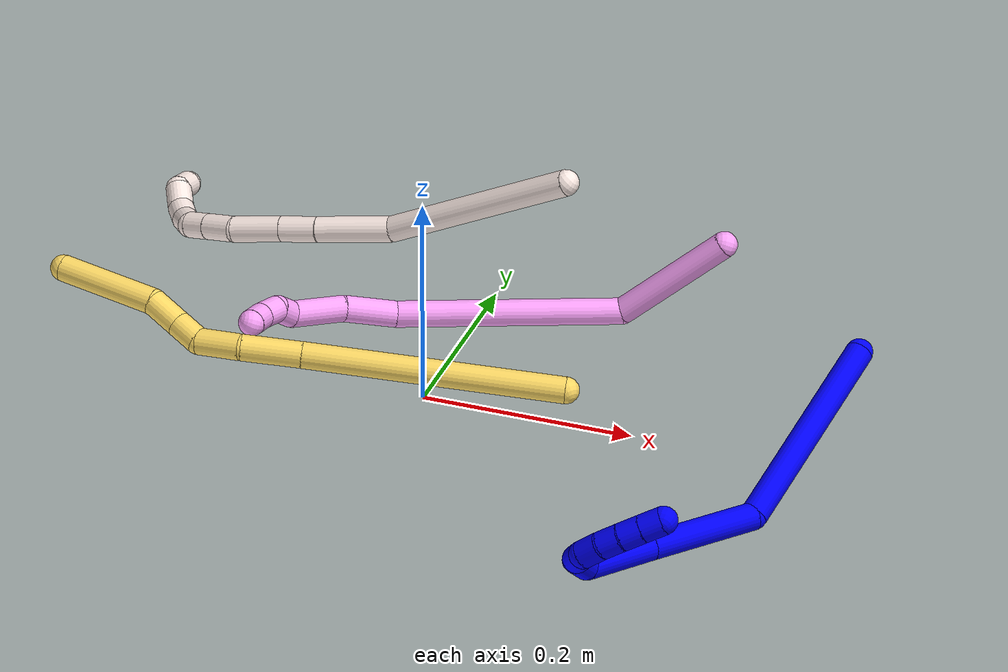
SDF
<sdf version="1.7">
 <world name="default">
  <model name="1">
   <static>0</static>
   <link name="1">
    <collision name="collision-cylinder-e_1_1_4">
     <pose>0.02632 -0.001243 0.097842 0.012704 0.262762 0.001679</pose>
     <geometry><cylinder><radius>0.0125</radius><length>0.202656</length></cylinder></geometry>
     <surface>
      <friction><ode><mu>1.16</mu><mu2>1.16</mu2><slip1>0</slip1><slip2>0</slip2></ode></friction>
      <contact><ode><kp>1e+06</kp><kd>1</kd><max_vel>0</max_vel><min_depth>0.001</min_depth></ode></contact>
     </surface>
    </collision>
    <visual name="visual-cylinder-e_1_1_4">
     <pose>0.02632 -0.001243 0.097842 0.012704 0.262762 0.001679</pose>
     <geometry><cylinder><radius>0.0125</radius><length>0.202656</length></cylinder></geometry>
     <material><ambient>0 0 1 1</ambient></material>
    </visual>
    <collision name="collision-cylinder-e_2_4_5">
     <pose>0.075457 -0.030783 0.233237 0.64576 0.451789 0.153486</pose>
     <geometry><cylinder><radius>0.0125</radius><length>0.104529</length></cylinder></geometry>
     <surface>
      <friction><ode><mu>1.16</mu><mu2>1.16</mu2><slip1>0</slip1><slip2>0</slip2></ode></friction>
      <contact><ode><kp>1e+06</kp><kd>1</kd><max_vel>0</max_vel><min_depth>0.001</min_depth></ode></contact>
     </surface>
    </collision>
    <visual name="visual-cylinder-e_2_4_5">
     <pose>0.075457 -0.030783 0.233237 0.64576 0.451789 0.153486</pose>
     <geometry><cylinder><radius>0.0125</radius><length>0.104529</length></cylinder></geometry>
     <material><ambient>0 0 1 1</ambient></material>
    </visual>
    <collision name="collision-cylinder-e_3_5_6">
     <pose>0.10944 -0.078076 0.297087 0.625548 0.331478 0.108083</pose>
     <geometry><cylinder><radius>0.0125</radius><length>0.068616</length></cylinder></geometry>
     <surface>
      <friction><ode><mu>1.16</mu><mu2>1.16</mu2><slip1>0</slip1><slip2>0</slip2></ode></friction>
      <contact><ode><kp>1e+06</kp><kd>1</kd><max_vel>0</max_vel><min_depth>0.001</min_depth></ode></contact>
     </surface>
    </collision>
    <visual name="visual-cylinder-e_3_5_6">
     <pose>0.10944 -0.078076 0.297087 0.625548 0.331478 0.108083</pose>
     <geometry><cylinder><radius>0.0125</radius><length>0.068616</length></cylinder></geometry>
     <material><ambient>0 0 1 1</ambient></material>
    </visual>
    <collision name="collision-cylinder-e_4_6_7">
     <pose>0.116403 -0.106094 0.329824 0.950914 -0.362294 -0.188038</pose>
     <geometry><cylinder><radius>0.0125</radius><length>0.023709</length></cylinder></geometry>
     <surface>
      <friction><ode><mu>1.16</mu><mu2>1.16</mu2><slip1>0</slip1><slip2>0</slip2></ode></friction>
      <contact><ode><kp>1e+06</kp><kd>1</kd><max_vel>0</max_vel><min_depth>0.001</min_depth></ode></contact>
     </surface>
    </collision>
    <visual name="visual-cylinder-e_4_6_7">
     <pose>0.116403 -0.106094 0.329824 0.950914 -0.362294 -0.188038</pose>
     <geometry><cylinder><radius>0.0125</radius><length>0.023709</length></cylinder></geometry>
     <material><ambient>0 0 1 1</ambient></material>
    </visual>
    <collision name="collision-cylinder-e_5_7_8">
     <pose>0.103779 -0.118727 0.34045 0.71173 -0.990024 -0.396048</pose>
     <geometry><cylinder><radius>0.0125</radius><length>0.020149</length></cylinder></geometry>
     <surface>
      <friction><ode><mu>1.16</mu><mu2>1.16</mu2><slip1>0</slip1><slip2>0</slip2></ode></friction>
      <contact><ode><kp>1e+06</kp><kd>1</kd><max_vel>0</max_vel><min_depth>0.001</min_depth></ode></contact>
     </surface>
    </collision>
    <visual name="visual-cylinder-e_5_7_8">
     <pose>0.103779 -0.118727 0.34045 0.71173 -0.990024 -0.396048</pose>
     <geometry><cylinder><radius>0.0125</radius><length>0.020149</length></cylinder></geometry>
     <material><ambient>0 0 1 1</ambient></material>
    </visual>
    <collision name="collision-cylinder-e_6_8_9">
     <pose>0.085358 -0.122084 0.34304 -2.98418 -1.41058 2.95684</pose>
     <geometry><cylinder><radius>0.0125</radius><length>0.020256</length></cylinder></geometry>
     <surface>
      <friction><ode><mu>1.16</mu><mu2>1.16</mu2><slip1>0</slip1><slip2>0</slip2></ode></friction>
      <contact><ode><kp>1e+06</kp><kd>1</kd><max_vel>0</max_vel><min_depth>0.001</min_depth></ode></contact>
     </surface>
    </collision>
    <visual name="visual-cylinder-e_6_8_9">
     <pose>0.085358 -0.122084 0.34304 -2.98418 -1.41058 2.95684</pose>
     <geometry><cylinder><radius>0.0125</radius><length>0.020256</length></cylinder></geometry>
     <material><ambient>0 0 1 1</ambient></material>
    </visual>
    <collision name="collision-cylinder-e_7_9_10">
     <pose>0.065816 -0.12032 0.338831 -2.61749 -1.26456 2.43968</pose>
     <geometry><cylinder><radius>0.0125</radius><length>0.020017</length></cylinder></geometry>
     <surface>
      <friction><ode><mu>1.16</mu><mu2>1.16</mu2><slip1>0</slip1><slip2>0</slip2></ode></friction>
      <contact><ode><kp>1e+06</kp><kd>1</kd><max_vel>0</max_vel><min_depth>0.001</min_depth></ode></contact>
     </surface>
    </collision>
    <visual name="visual-cylinder-e_7_9_10">
     <pose>0.065816 -0.12032 0.338831 -2.61749 -1.26456 2.43968</pose>
     <geometry><cylinder><radius>0.0125</radius><length>0.020017</length></cylinder></geometry>
     <material><ambient>0 0 1 1</ambient></material>
    </visual>
    <collision name="collision-cylinder-e_8_10_11">
     <pose>0.04708 -0.116732 0.332797 -2.59589 -1.16005 2.33432</pose>
     <geometry><cylinder><radius>0.0125</radius><length>0.020055</length></cylinder></geometry>
     <surface>
      <friction><ode><mu>1.16</mu><mu2>1.16</mu2><slip1>0</slip1><slip2>0</slip2></ode></friction>
      <contact><ode><kp>1e+06</kp><kd>1</kd><max_vel>0</max_vel><min_depth>0.001</min_depth></ode></contact>
     </surface>
    </collision>
    <visual name="visual-cylinder-e_8_10_11">
     <pose>0.04708 -0.116732 0.332797 -2.59589 -1.16005 2.33432</pose>
     <geometry><cylinder><radius>0.0125</radius><length>0.020055</length></cylinder></geometry>
     <material><ambient>0 0 1 1</ambient></material>
    </visual>
    <collision name="collision-cylinder-e_9_11_2">
     <pose>0.028726 -0.112475 0.325989 -2.56977 -1.1567 2.29537</pose>
     <geometry><cylinder><radius>0.0125</radius><length>0.020012</length></cylinder></geometry>
     <surface>
      <friction><ode><mu>1.16</mu><mu2>1.16</mu2><slip1>0</slip1><slip2>0</slip2></ode></friction>
      <contact><ode><kp>1e+06</kp><kd>1</kd><max_vel>0</max_vel><min_depth>0.001</min_depth></ode></contact>
     </surface>
    </collision>
    <visual name="visual-cylinder-e_9_11_2">
     <pose>0.028726 -0.112475 0.325989 -2.56977 -1.1567 2.29537</pose>
     <geometry><cylinder><radius>0.0125</radius><length>0.020012</length></cylinder></geometry>
     <material><ambient>0 0 1 1</ambient></material>
    </visual>
    <collision name="collision-sphere-2">
     <pose>0.019565 -0.110296 0.322603 0 -0 0</pose>
     <geometry><sphere><radius>0.0125</radius></sphere></geometry>
     <surface>
      <friction><ode><mu>1.16</mu><mu2>1.16</mu2><slip1>0</slip1><slip2>0</slip2></ode></friction>
      <contact><ode><kp>1e+06</kp><kd>1</kd><max_vel>0</max_vel><min_depth>0.001</min_depth></ode></contact>
     </surface>
    </collision>
    <visual name="visual-sphere-2">
     <pose>0.019565 -0.110296 0.322603 0 -0 0</pose>
     <geometry><sphere><radius>0.0125</radius></sphere></geometry>
     <material><ambient>0 0 1 1</ambient></material>
    </visual>
    <collision name="collision-sphere-11">
     <pose>0.037886 -0.114654 0.329374 0 -0 0</pose>
     <geometry><sphere><radius>0.0125</radius></sphere></geometry>
     <surface>
      <friction><ode><mu>1.16</mu><mu2>1.16</mu2><slip1>0</slip1><slip2>0</slip2></ode></friction>
      <contact><ode><kp>1e+06</kp><kd>1</kd><max_vel>0</max_vel><min_depth>0.001</min_depth></ode></contact>
     </surface>
    </collision>
    <visual name="visual-sphere-11">
     <pose>0.037886 -0.114654 0.329374 0 -0 0</pose>
     <geometry><sphere><radius>0.0125</radius></sphere></geometry>
     <material><ambient>0 0 1 1</ambient></material>
    </visual>
    <collision name="collision-sphere-10">
     <pose>0.056273 -0.11881 0.336219 0 -0 0</pose>
     <geometry><sphere><radius>0.0125</radius></sphere></geometry>
     <surface>
      <friction><ode><mu>1.16</mu><mu2>1.16</mu2><slip1>0</slip1><slip2>0</slip2></ode></friction>
      <contact><ode><kp>1e+06</kp><kd>1</kd><max_vel>0</max_vel><min_depth>0.001</min_depth></ode></contact>
     </surface>
    </collision>
    <visual name="visual-sphere-10">
     <pose>0.056273 -0.11881 0.336219 0 -0 0</pose>
     <geometry><sphere><radius>0.0125</radius></sphere></geometry>
     <material><ambient>0 0 1 1</ambient></material>
    </visual>
    <collision name="collision-sphere-9">
     <pose>0.075359 -0.12183 0.341444 0 -0 0</pose>
     <geometry><sphere><radius>0.0125</radius></sphere></geometry>
     <surface>
      <friction><ode><mu>1.16</mu><mu2>1.16</mu2><slip1>0</slip1><slip2>0</slip2></ode></friction>
      <contact><ode><kp>1e+06</kp><kd>1</kd><max_vel>0</max_vel><min_depth>0.001</min_depth></ode></contact>
     </surface>
    </collision>
    <visual name="visual-sphere-9">
     <pose>0.075359 -0.12183 0.341444 0 -0 0</pose>
     <geometry><sphere><radius>0.0125</radius></sphere></geometry>
     <material><ambient>0 0 1 1</ambient></material>
    </visual>
    <collision name="collision-sphere-4">
     <pose>0.05264 -0.002486 0.195684 0 -0 0</pose>
     <geometry><sphere><radius>0.0125</radius></sphere></geometry>
     <surface>
      <friction><ode><mu>1.16</mu><mu2>1.16</mu2><slip1>0</slip1><slip2>0</slip2></ode></friction>
      <contact><ode><kp>1e+06</kp><kd>1</kd><max_vel>0</max_vel><min_depth>0.001</min_depth></ode></contact>
     </surface>
    </collision>
    <visual name="visual-sphere-4">
     <pose>0.05264 -0.002486 0.195684 0 -0 0</pose>
     <geometry><sphere><radius>0.0125</radius></sphere></geometry>
     <material><ambient>0 0 1 1</ambient></material>
    </visual>
    <collision name="collision-sphere-1">
     <geometry><sphere><radius>0.0125</radius></sphere></geometry>
     <surface>
      <friction><ode><mu>1.16</mu><mu2>1.16</mu2><slip1>0</slip1><slip2>0</slip2></ode></friction>
      <contact><ode><kp>1e+06</kp><kd>1</kd><max_vel>0</max_vel><min_depth>0.001</min_depth></ode></contact>
     </surface>
    </collision>
    <visual name="visual-sphere-1">
     <geometry><sphere><radius>0.0125</radius></sphere></geometry>
     <material><ambient>0 0 1 1</ambient></material>
    </visual>
    <collision name="collision-sphere-8">
     <pose>0.095356 -0.122337 0.344635 0 -0 0</pose>
     <geometry><sphere><radius>0.0125</radius></sphere></geometry>
     <surface>
      <friction><ode><mu>1.16</mu><mu2>1.16</mu2><slip1>0</slip1><slip2>0</slip2></ode></friction>
      <contact><ode><kp>1e+06</kp><kd>1</kd><max_vel>0</max_vel><min_depth>0.001</min_depth></ode></contact>
     </surface>
    </collision>
    <visual name="visual-sphere-8">
     <pose>0.095356 -0.122337 0.344635 0 -0 0</pose>
     <geometry><sphere><radius>0.0125</radius></sphere></geometry>
     <material><ambient>0 0 1 1</ambient></material>
    </visual>
    <collision name="collision-sphere-5">
     <pose>0.098274 -0.059081 0.270789 0 -0 0</pose>
     <geometry><sphere><radius>0.0125</radius></sphere></geometry>
     <surface>
      <friction><ode><mu>1.16</mu><mu2>1.16</mu2><slip1>0</slip1><slip2>0</slip2></ode></friction>
      <contact><ode><kp>1e+06</kp><kd>1</kd><max_vel>0</max_vel><min_depth>0.001</min_depth></ode></contact>
     </surface>
    </collision>
    <visual name="visual-sphere-5">
     <pose>0.098274 -0.059081 0.270789 0 -0 0</pose>
     <geometry><sphere><radius>0.0125</radius></sphere></geometry>
     <material><ambient>0 0 1 1</ambient></material>
    </visual>
    <collision name="collision-sphere-6">
     <pose>0.120605 -0.097071 0.323384 0 -0 0</pose>
     <geometry><sphere><radius>0.0125</radius></sphere></geometry>
     <surface>
      <friction><ode><mu>1.16</mu><mu2>1.16</mu2><slip1>0</slip1><slip2>0</slip2></ode></friction>
      <contact><ode><kp>1e+06</kp><kd>1</kd><max_vel>0</max_vel><min_depth>0.001</min_depth></ode></contact>
     </surface>
    </collision>
    <visual name="visual-sphere-6">
     <pose>0.120605 -0.097071 0.323384 0 -0 0</pose>
     <geometry><sphere><radius>0.0125</radius></sphere></geometry>
     <material><ambient>0 0 1 1</ambient></material>
    </visual>
    <collision name="collision-sphere-7">
     <pose>0.112202 -0.115116 0.336264 0 -0 0</pose>
     <geometry><sphere><radius>0.0125</radius></sphere></geometry>
     <surface>
      <friction><ode><mu>1.16</mu><mu2>1.16</mu2><slip1>0</slip1><slip2>0</slip2></ode></friction>
      <contact><ode><kp>1e+06</kp><kd>1</kd><max_vel>0</max_vel><min_depth>0.001</min_depth></ode></contact>
     </surface>
    </collision>
    <visual name="visual-sphere-7">
     <pose>0.112202 -0.115116 0.336264 0 -0 0</pose>
     <geometry><sphere><radius>0.0125</radius></sphere></geometry>
     <material><ambient>0 0 1 1</ambient></material>
    </visual>
    <inertial>
     <pose>0.060294 -0.046416 0.212404 0 -0 0</pose>
     <mass>0.5</mass>
     <inertia>
      <ixx>0.000815</ixx>
      <ixy>0</ixy>
      <ixz>0</ixz>
      <iyy>0.000826</iyy>
      <iyz>0</iyz>
      <izz>-0.000123</izz>
     </inertia>
    </inertial>
   </link>
   <pose>0.387569 0.078339 0.082628 -1.8395 0.634901 2.99693</pose>
  </model>
  <model name="4">
   <static>0</static>
   <link name="4">
    <collision name="collision-cylinder-e_1_1_4">
     <pose>0.00105 -0.056448 -0.022982 1.95744 0.017222 0.025606</pose>
     <geometry><cylinder><radius>0.0125</radius><length>0.121912</length></cylinder></geometry>
     <surface>
      <friction><ode><mu>1.16</mu><mu2>1.16</mu2><slip1>0</slip1><slip2>0</slip2></ode></friction>
      <contact><ode><kp>1e+06</kp><kd>1</kd><max_vel>0</max_vel><min_depth>0.001</min_depth></ode></contact>
     </surface>
    </collision>
    <visual name="visual-cylinder-e_1_1_4">
     <pose>0.00105 -0.056448 -0.022982 1.95744 0.017222 0.025606</pose>
     <geometry><cylinder><radius>0.0125</radius><length>0.121912</length></cylinder></geometry>
     <material><ambient>1 0.65098 0.996078 1</ambient></material>
    </visual>
    <collision name="collision-cylinder-e_2_4_5">
     <pose>0.008107 -0.159903 -0.141013 2.68231 0.056593 0.240986</pose>
     <geometry><cylinder><radius>0.0125</radius><length>0.212416</length></cylinder></geometry>
     <surface>
      <friction><ode><mu>1.16</mu><mu2>1.16</mu2><slip1>0</slip1><slip2>0</slip2></ode></friction>
      <contact><ode><kp>1e+06</kp><kd>1</kd><max_vel>0</max_vel><min_depth>0.001</min_depth></ode></contact>
     </surface>
    </collision>
    <visual name="visual-cylinder-e_2_4_5">
     <pose>0.008107 -0.159903 -0.141013 2.68231 0.056593 0.240986</pose>
     <geometry><cylinder><radius>0.0125</radius><length>0.212416</length></cylinder></geometry>
     <material><ambient>1 0.65098 0.996078 1</ambient></material>
    </visual>
    <collision name="collision-cylinder-e_3_5_6">
     <pose>0.012183 -0.211211 -0.261368 2.97326 -0.075107 -0.837935</pose>
     <geometry><cylinder><radius>0.0125</radius><length>0.051482</length></cylinder></geometry>
     <surface>
      <friction><ode><mu>1.16</mu><mu2>1.16</mu2><slip1>0</slip1><slip2>0</slip2></ode></friction>
      <contact><ode><kp>1e+06</kp><kd>1</kd><max_vel>0</max_vel><min_depth>0.001</min_depth></ode></contact>
     </surface>
    </collision>
    <visual name="visual-cylinder-e_3_5_6">
     <pose>0.012183 -0.211211 -0.261368 2.97326 -0.075107 -0.837935</pose>
     <geometry><cylinder><radius>0.0125</radius><length>0.051482</length></cylinder></geometry>
     <material><ambient>1 0.65098 0.996078 1</ambient></material>
    </visual>
    <collision name="collision-cylinder-e_4_6_7">
     <pose>0.003752 -0.222615 -0.310847 2.85577 -0.252455 -1.44548</pose>
     <geometry><cylinder><radius>0.0125</radius><length>0.052041</length></cylinder></geometry>
     <surface>
      <friction><ode><mu>1.16</mu><mu2>1.16</mu2><slip1>0</slip1><slip2>0</slip2></ode></friction>
      <contact><ode><kp>1e+06</kp><kd>1</kd><max_vel>0</max_vel><min_depth>0.001</min_depth></ode></contact>
     </surface>
    </collision>
    <visual name="visual-cylinder-e_4_6_7">
     <pose>0.003752 -0.222615 -0.310847 2.85577 -0.252455 -1.44548</pose>
     <geometry><cylinder><radius>0.0125</radius><length>0.052041</length></cylinder></geometry>
     <material><ambient>1 0.65098 0.996078 1</ambient></material>
    </visual>
    <collision name="collision-cylinder-e_5_7_8">
     <pose>-0.005951 -0.226192 -0.344075 -2.77013 -0.31849 1.4145</pose>
     <geometry><cylinder><radius>0.0125</radius><length>0.020463</length></cylinder></geometry>
     <surface>
      <friction><ode><mu>1.16</mu><mu2>1.16</mu2><slip1>0</slip1><slip2>0</slip2></ode></friction>
      <contact><ode><kp>1e+06</kp><kd>1</kd><max_vel>0</max_vel><min_depth>0.001</min_depth></ode></contact>
     </surface>
    </collision>
    <visual name="visual-cylinder-e_5_7_8">
     <pose>-0.005951 -0.226192 -0.344075 -2.77013 -0.31849 1.4145</pose>
     <geometry><cylinder><radius>0.0125</radius><length>0.020463</length></cylinder></geometry>
     <material><ambient>1 0.65098 0.996078 1</ambient></material>
    </visual>
    <collision name="collision-cylinder-e_6_8_9">
     <pose>-0.015984 -0.22381 -0.361226 3.00102 -0.695777 -2.75809</pose>
     <geometry><cylinder><radius>0.0125</radius><length>0.021307</length></cylinder></geometry>
     <surface>
      <friction><ode><mu>1.16</mu><mu2>1.16</mu2><slip1>0</slip1><slip2>0</slip2></ode></friction>
      <contact><ode><kp>1e+06</kp><kd>1</kd><max_vel>0</max_vel><min_depth>0.001</min_depth></ode></contact>
     </surface>
    </collision>
    <visual name="visual-cylinder-e_6_8_9">
     <pose>-0.015984 -0.22381 -0.361226 3.00102 -0.695777 -2.75809</pose>
     <geometry><cylinder><radius>0.0125</radius><length>0.021307</length></cylinder></geometry>
     <material><ambient>1 0.65098 0.996078 1</ambient></material>
    </visual>
    <collision name="collision-cylinder-e_7_9_2">
     <pose>-0.030814 -0.223884 -0.375539 -2.97089 -0.903178 2.79237</pose>
     <geometry><cylinder><radius>0.0125</radius><length>0.020379</length></cylinder></geometry>
     <surface>
      <friction><ode><mu>1.16</mu><mu2>1.16</mu2><slip1>0</slip1><slip2>0</slip2></ode></friction>
      <contact><ode><kp>1e+06</kp><kd>1</kd><max_vel>0</max_vel><min_depth>0.001</min_depth></ode></contact>
     </surface>
    </collision>
    <visual name="visual-cylinder-e_7_9_2">
     <pose>-0.030814 -0.223884 -0.375539 -2.97089 -0.903178 2.79237</pose>
     <geometry><cylinder><radius>0.0125</radius><length>0.020379</length></cylinder></geometry>
     <material><ambient>1 0.65098 0.996078 1</ambient></material>
    </visual>
    <collision name="collision-sphere-2">
     <pose>-0.038816 -0.222813 -0.381756 0 -0 0</pose>
     <geometry><sphere><radius>0.0125</radius></sphere></geometry>
     <surface>
      <friction><ode><mu>1.16</mu><mu2>1.16</mu2><slip1>0</slip1><slip2>0</slip2></ode></friction>
      <contact><ode><kp>1e+06</kp><kd>1</kd><max_vel>0</max_vel><min_depth>0.001</min_depth></ode></contact>
     </surface>
    </collision>
    <visual name="visual-sphere-2">
     <pose>-0.038816 -0.222813 -0.381756 0 -0 0</pose>
     <geometry><sphere><radius>0.0125</radius></sphere></geometry>
     <material><ambient>1 0.65098 0.996078 1</ambient></material>
    </visual>
    <collision name="collision-sphere-9">
     <pose>-0.022812 -0.224956 -0.369322 0 -0 0</pose>
     <geometry><sphere><radius>0.0125</radius></sphere></geometry>
     <surface>
      <friction><ode><mu>1.16</mu><mu2>1.16</mu2><slip1>0</slip1><slip2>0</slip2></ode></friction>
      <contact><ode><kp>1e+06</kp><kd>1</kd><max_vel>0</max_vel><min_depth>0.001</min_depth></ode></contact>
     </surface>
    </collision>
    <visual name="visual-sphere-9">
     <pose>-0.022812 -0.224956 -0.369322 0 -0 0</pose>
     <geometry><sphere><radius>0.0125</radius></sphere></geometry>
     <material><ambient>1 0.65098 0.996078 1</ambient></material>
    </visual>
    <collision name="collision-sphere-4">
     <pose>0.0021 -0.112896 -0.045964 0 -0 0</pose>
     <geometry><sphere><radius>0.0125</radius></sphere></geometry>
     <surface>
      <friction><ode><mu>1.16</mu><mu2>1.16</mu2><slip1>0</slip1><slip2>0</slip2></ode></friction>
      <contact><ode><kp>1e+06</kp><kd>1</kd><max_vel>0</max_vel><min_depth>0.001</min_depth></ode></contact>
     </surface>
    </collision>
    <visual name="visual-sphere-4">
     <pose>0.0021 -0.112896 -0.045964 0 -0 0</pose>
     <geometry><sphere><radius>0.0125</radius></sphere></geometry>
     <material><ambient>1 0.65098 0.996078 1</ambient></material>
    </visual>
    <collision name="collision-sphere-1">
     <geometry><sphere><radius>0.0125</radius></sphere></geometry>
     <surface>
      <friction><ode><mu>1.16</mu><mu2>1.16</mu2><slip1>0</slip1><slip2>0</slip2></ode></friction>
      <contact><ode><kp>1e+06</kp><kd>1</kd><max_vel>0</max_vel><min_depth>0.001</min_depth></ode></contact>
     </surface>
    </collision>
    <visual name="visual-sphere-1">
     <geometry><sphere><radius>0.0125</radius></sphere></geometry>
     <material><ambient>1 0.65098 0.996078 1</ambient></material>
    </visual>
    <collision name="collision-sphere-8">
     <pose>-0.009155 -0.222665 -0.353129 0 -0 0</pose>
     <geometry><sphere><radius>0.0125</radius></sphere></geometry>
     <surface>
      <friction><ode><mu>1.16</mu><mu2>1.16</mu2><slip1>0</slip1><slip2>0</slip2></ode></friction>
      <contact><ode><kp>1e+06</kp><kd>1</kd><max_vel>0</max_vel><min_depth>0.001</min_depth></ode></contact>
     </surface>
    </collision>
    <visual name="visual-sphere-8">
     <pose>-0.009155 -0.222665 -0.353129 0 -0 0</pose>
     <geometry><sphere><radius>0.0125</radius></sphere></geometry>
     <material><ambient>1 0.65098 0.996078 1</ambient></material>
    </visual>
    <collision name="collision-sphere-5">
     <pose>0.014114 -0.20691 -0.236062 0 -0 0</pose>
     <geometry><sphere><radius>0.0125</radius></sphere></geometry>
     <surface>
      <friction><ode><mu>1.16</mu><mu2>1.16</mu2><slip1>0</slip1><slip2>0</slip2></ode></friction>
      <contact><ode><kp>1e+06</kp><kd>1</kd><max_vel>0</max_vel><min_depth>0.001</min_depth></ode></contact>
     </surface>
    </collision>
    <visual name="visual-sphere-5">
     <pose>0.014114 -0.20691 -0.236062 0 -0 0</pose>
     <geometry><sphere><radius>0.0125</radius></sphere></geometry>
     <material><ambient>1 0.65098 0.996078 1</ambient></material>
    </visual>
    <collision name="collision-sphere-6">
     <pose>0.010251 -0.215511 -0.286674 0 -0 0</pose>
     <geometry><sphere><radius>0.0125</radius></sphere></geometry>
     <surface>
      <friction><ode><mu>1.16</mu><mu2>1.16</mu2><slip1>0</slip1><slip2>0</slip2></ode></friction>
      <contact><ode><kp>1e+06</kp><kd>1</kd><max_vel>0</max_vel><min_depth>0.001</min_depth></ode></contact>
     </surface>
    </collision>
    <visual name="visual-sphere-6">
     <pose>0.010251 -0.215511 -0.286674 0 -0 0</pose>
     <geometry><sphere><radius>0.0125</radius></sphere></geometry>
     <material><ambient>1 0.65098 0.996078 1</ambient></material>
    </visual>
    <collision name="collision-sphere-7">
     <pose>-0.002748 -0.229719 -0.335021 0 -0 0</pose>
     <geometry><sphere><radius>0.0125</radius></sphere></geometry>
     <surface>
      <friction><ode><mu>1.16</mu><mu2>1.16</mu2><slip1>0</slip1><slip2>0</slip2></ode></friction>
      <contact><ode><kp>1e+06</kp><kd>1</kd><max_vel>0</max_vel><min_depth>0.001</min_depth></ode></contact>
     </surface>
    </collision>
    <visual name="visual-sphere-7">
     <pose>-0.002748 -0.229719 -0.335021 0 -0 0</pose>
     <geometry><sphere><radius>0.0125</radius></sphere></geometry>
     <material><ambient>1 0.65098 0.996078 1</ambient></material>
    </visual>
    <inertial>
     <pose>0.003164 -0.154532 -0.169557 0 -0 0</pose>
     <mass>0.5</mass>
     <inertia>
      <ixx>0.001118</ixx>
      <ixy>0</ixy>
      <ixz>0</ixz>
      <iyy>-0.000606</iyy>
      <iyz>0</iyz>
      <izz>0.000436</izz>
     </inertia>
    </inertial>
   </link>
   <pose>0.219476 0.211693 0.089743 2.02727 -0.240385 2.01735</pose>
  </model>
  <model name="5">
   <static>0</static>
   <link name="5">
    <collision name="collision-cylinder-e_1_1_4">
     <pose>-0.097866 -0.015475 -0.071579 2.92867 -0.928383 -2.72102</pose>
     <geometry><cylinder><radius>0.0125</radius><length>0.244465</length></cylinder></geometry>
     <surface>
      <friction><ode><mu>1.16</mu><mu2>1.16</mu2><slip1>0</slip1><slip2>0</slip2></ode></friction>
      <contact><ode><kp>1e+06</kp><kd>1</kd><max_vel>0</max_vel><min_depth>0.001</min_depth></ode></contact>
     </surface>
    </collision>
    <visual name="visual-cylinder-e_1_1_4">
     <pose>-0.097866 -0.015475 -0.071579 2.92867 -0.928383 -2.72102</pose>
     <geometry><cylinder><radius>0.0125</radius><length>0.244465</length></cylinder></geometry>
     <material><ambient>1 0.858824 0.4 1</ambient></material>
    </visual>
    <collision name="collision-cylinder-e_2_4_5">
     <pose>-0.219232 -0.033285 -0.158934 2.99472 -0.974598 -2.86571</pose>
     <geometry><cylinder><radius>0.0125</radius><length>0.056803</length></cylinder></geometry>
     <surface>
      <friction><ode><mu>1.16</mu><mu2>1.16</mu2><slip1>0</slip1><slip2>0</slip2></ode></friction>
      <contact><ode><kp>1e+06</kp><kd>1</kd><max_vel>0</max_vel><min_depth>0.001</min_depth></ode></contact>
     </surface>
    </collision>
    <visual name="visual-cylinder-e_2_4_5">
     <pose>-0.219232 -0.033285 -0.158934 2.99472 -0.974598 -2.86571</pose>
     <geometry><cylinder><radius>0.0125</radius><length>0.056803</length></cylinder></geometry>
     <material><ambient>1 0.858824 0.4 1</ambient></material>
    </visual>
    <collision name="collision-cylinder-e_3_5_6">
     <pose>-0.257382 -0.041712 -0.18845 2.72419 -0.77252 -2.18137</pose>
     <geometry><cylinder><radius>0.0125</radius><length>0.041976</length></cylinder></geometry>
     <surface>
      <friction><ode><mu>1.16</mu><mu2>1.16</mu2><slip1>0</slip1><slip2>0</slip2></ode></friction>
      <contact><ode><kp>1e+06</kp><kd>1</kd><max_vel>0</max_vel><min_depth>0.001</min_depth></ode></contact>
     </surface>
    </collision>
    <visual name="visual-cylinder-e_3_5_6">
     <pose>-0.257382 -0.041712 -0.18845 2.72419 -0.77252 -2.18137</pose>
     <geometry><cylinder><radius>0.0125</radius><length>0.041976</length></cylinder></geometry>
     <material><ambient>1 0.858824 0.4 1</ambient></material>
    </visual>
    <collision name="collision-cylinder-e_4_6_7">
     <pose>-0.275966 -0.049418 -0.215084 3.01715 -0.29409 -2.34525</pose>
     <geometry><cylinder><radius>0.0125</radius><length>0.027157</length></cylinder></geometry>
     <surface>
      <friction><ode><mu>1.16</mu><mu2>1.16</mu2><slip1>0</slip1><slip2>0</slip2></ode></friction>
      <contact><ode><kp>1e+06</kp><kd>1</kd><max_vel>0</max_vel><min_depth>0.001</min_depth></ode></contact>
     </surface>
    </collision>
    <visual name="visual-cylinder-e_4_6_7">
     <pose>-0.275966 -0.049418 -0.215084 3.01715 -0.29409 -2.34525</pose>
     <geometry><cylinder><radius>0.0125</radius><length>0.027157</length></cylinder></geometry>
     <material><ambient>1 0.858824 0.4 1</ambient></material>
    </visual>
    <collision name="collision-cylinder-e_5_7_8">
     <pose>-0.285618 -0.051029 -0.243476 -3.14146 -0.353365 3.14084</pose>
     <geometry><cylinder><radius>0.0125</radius><length>0.033035</length></cylinder></geometry>
     <surface>
      <friction><ode><mu>1.16</mu><mu2>1.16</mu2><slip1>0</slip1><slip2>0</slip2></ode></friction>
      <contact><ode><kp>1e+06</kp><kd>1</kd><max_vel>0</max_vel><min_depth>0.001</min_depth></ode></contact>
     </surface>
    </collision>
    <visual name="visual-cylinder-e_5_7_8">
     <pose>-0.285618 -0.051029 -0.243476 -3.14146 -0.353365 3.14084</pose>
     <geometry><cylinder><radius>0.0125</radius><length>0.033035</length></cylinder></geometry>
     <material><ambient>1 0.858824 0.4 1</ambient></material>
    </visual>
    <collision name="collision-cylinder-e_6_8_2">
     <pose>-0.318741 -0.061438 -0.297336 2.87658 -0.603626 -2.33255</pose>
     <geometry><cylinder><radius>0.0125</radius><length>0.096566</length></cylinder></geometry>
     <surface>
      <friction><ode><mu>1.16</mu><mu2>1.16</mu2><slip1>0</slip1><slip2>0</slip2></ode></friction>
      <contact><ode><kp>1e+06</kp><kd>1</kd><max_vel>0</max_vel><min_depth>0.001</min_depth></ode></contact>
     </surface>
    </collision>
    <visual name="visual-cylinder-e_6_8_2">
     <pose>-0.318741 -0.061438 -0.297336 2.87658 -0.603626 -2.33255</pose>
     <geometry><cylinder><radius>0.0125</radius><length>0.096566</length></cylinder></geometry>
     <material><ambient>1 0.858824 0.4 1</ambient></material>
    </visual>
    <collision name="collision-sphere-2">
     <pose>-0.346148 -0.07185 -0.335699 0 -0 0</pose>
     <geometry><sphere><radius>0.0125</radius></sphere></geometry>
     <surface>
      <friction><ode><mu>1.16</mu><mu2>1.16</mu2><slip1>0</slip1><slip2>0</slip2></ode></friction>
      <contact><ode><kp>1e+06</kp><kd>1</kd><max_vel>0</max_vel><min_depth>0.001</min_depth></ode></contact>
     </surface>
    </collision>
    <visual name="visual-sphere-2">
     <pose>-0.346148 -0.07185 -0.335699 0 -0 0</pose>
     <geometry><sphere><radius>0.0125</radius></sphere></geometry>
     <material><ambient>1 0.858824 0.4 1</ambient></material>
    </visual>
    <collision name="collision-sphere-4">
     <pose>-0.195731 -0.030951 -0.143158 0 -0 0</pose>
     <geometry><sphere><radius>0.0125</radius></sphere></geometry>
     <surface>
      <friction><ode><mu>1.16</mu><mu2>1.16</mu2><slip1>0</slip1><slip2>0</slip2></ode></friction>
      <contact><ode><kp>1e+06</kp><kd>1</kd><max_vel>0</max_vel><min_depth>0.001</min_depth></ode></contact>
     </surface>
    </collision>
    <visual name="visual-sphere-4">
     <pose>-0.195731 -0.030951 -0.143158 0 -0 0</pose>
     <geometry><sphere><radius>0.0125</radius></sphere></geometry>
     <material><ambient>1 0.858824 0.4 1</ambient></material>
    </visual>
    <collision name="collision-sphere-1">
     <geometry><sphere><radius>0.0125</radius></sphere></geometry>
     <surface>
      <friction><ode><mu>1.16</mu><mu2>1.16</mu2><slip1>0</slip1><slip2>0</slip2></ode></friction>
      <contact><ode><kp>1e+06</kp><kd>1</kd><max_vel>0</max_vel><min_depth>0.001</min_depth></ode></contact>
     </surface>
    </collision>
    <visual name="visual-sphere-1">
     <geometry><sphere><radius>0.0125</radius></sphere></geometry>
     <material><ambient>1 0.858824 0.4 1</ambient></material>
    </visual>
    <collision name="collision-sphere-8">
     <pose>-0.291334 -0.051027 -0.258973 0 -0 0</pose>
     <geometry><sphere><radius>0.0125</radius></sphere></geometry>
     <surface>
      <friction><ode><mu>1.16</mu><mu2>1.16</mu2><slip1>0</slip1><slip2>0</slip2></ode></friction>
      <contact><ode><kp>1e+06</kp><kd>1</kd><max_vel>0</max_vel><min_depth>0.001</min_depth></ode></contact>
     </surface>
    </collision>
    <visual name="visual-sphere-8">
     <pose>-0.291334 -0.051027 -0.258973 0 -0 0</pose>
     <geometry><sphere><radius>0.0125</radius></sphere></geometry>
     <material><ambient>1 0.858824 0.4 1</ambient></material>
    </visual>
    <collision name="collision-sphere-5">
     <pose>-0.242734 -0.035618 -0.17471 0 -0 0</pose>
     <geometry><sphere><radius>0.0125</radius></sphere></geometry>
     <surface>
      <friction><ode><mu>1.16</mu><mu2>1.16</mu2><slip1>0</slip1><slip2>0</slip2></ode></friction>
      <contact><ode><kp>1e+06</kp><kd>1</kd><max_vel>0</max_vel><min_depth>0.001</min_depth></ode></contact>
     </surface>
    </collision>
    <visual name="visual-sphere-5">
     <pose>-0.242734 -0.035618 -0.17471 0 -0 0</pose>
     <geometry><sphere><radius>0.0125</radius></sphere></geometry>
     <material><ambient>1 0.858824 0.4 1</ambient></material>
    </visual>
    <collision name="collision-sphere-6">
     <pose>-0.27203 -0.047805 -0.20219 0 -0 0</pose>
     <geometry><sphere><radius>0.0125</radius></sphere></geometry>
     <surface>
      <friction><ode><mu>1.16</mu><mu2>1.16</mu2><slip1>0</slip1><slip2>0</slip2></ode></friction>
      <contact><ode><kp>1e+06</kp><kd>1</kd><max_vel>0</max_vel><min_depth>0.001</min_depth></ode></contact>
     </surface>
    </collision>
    <visual name="visual-sphere-6">
     <pose>-0.27203 -0.047805 -0.20219 0 -0 0</pose>
     <geometry><sphere><radius>0.0125</radius></sphere></geometry>
     <material><ambient>1 0.858824 0.4 1</ambient></material>
    </visual>
    <collision name="collision-sphere-7">
     <pose>-0.279902 -0.051031 -0.227979 0 -0 0</pose>
     <geometry><sphere><radius>0.0125</radius></sphere></geometry>
     <surface>
      <friction><ode><mu>1.16</mu><mu2>1.16</mu2><slip1>0</slip1><slip2>0</slip2></ode></friction>
      <contact><ode><kp>1e+06</kp><kd>1</kd><max_vel>0</max_vel><min_depth>0.001</min_depth></ode></contact>
     </surface>
    </collision>
    <visual name="visual-sphere-7">
     <pose>-0.279902 -0.051031 -0.227979 0 -0 0</pose>
     <geometry><sphere><radius>0.0125</radius></sphere></geometry>
     <material><ambient>1 0.858824 0.4 1</ambient></material>
    </visual>
    <inertial>
     <pose>-0.189781 -0.032771 -0.154067 0 -0 0</pose>
     <mass>0.5</mass>
     <inertia>
      <ixx>-0.001118</ixx>
      <ixy>0</ixy>
      <ixz>0</ixz>
      <iyy>0.000908</iyy>
      <iyz>0</iyz>
      <izz>0.0012</izz>
     </inertia>
    </inertial>
   </link>
   <pose>0.125078 0.036876 0.012423 2.04957 -0.119639 0.80749</pose>
  </model>
  <model name="11">
   <static>0</static>
   <link name="11">
    <collision name="collision-cylinder-e_1_1_4">
     <pose>-0.009444 0.04733 -0.08524 -2.63472 -0.096563 0.368873</pose>
     <geometry><cylinder><radius>0.0125</radius><length>0.195911</length></cylinder></geometry>
     <surface>
      <friction><ode><mu>1.16</mu><mu2>1.16</mu2><slip1>0</slip1><slip2>0</slip2></ode></friction>
      <contact><ode><kp>1e+06</kp><kd>1</kd><max_vel>0</max_vel><min_depth>0.001</min_depth></ode></contact>
     </surface>
    </collision>
    <visual name="visual-cylinder-e_1_1_4">
     <pose>-0.009444 0.04733 -0.08524 -2.63472 -0.096563 0.368873</pose>
     <geometry><cylinder><radius>0.0125</radius><length>0.195911</length></cylinder></geometry>
     <material><ambient>1 0.933333 0.909804 1</ambient></material>
    </visual>
    <collision name="collision-cylinder-e_2_4_5">
     <pose>-0.034273 0.113436 -0.19829 -2.54774 -0.429899 1.23951</pose>
     <geometry><cylinder><radius>0.0125</radius><length>0.073826</length></cylinder></geometry>
     <surface>
      <friction><ode><mu>1.16</mu><mu2>1.16</mu2><slip1>0</slip1><slip2>0</slip2></ode></friction>
      <contact><ode><kp>1e+06</kp><kd>1</kd><max_vel>0</max_vel><min_depth>0.001</min_depth></ode></contact>
     </surface>
    </collision>
    <visual name="visual-cylinder-e_2_4_5">
     <pose>-0.034273 0.113436 -0.19829 -2.54774 -0.429899 1.23951</pose>
     <geometry><cylinder><radius>0.0125</radius><length>0.073826</length></cylinder></geometry>
     <material><ambient>1 0.933333 0.909804 1</ambient></material>
    </visual>
    <collision name="collision-cylinder-e_3_5_6">
     <pose>-0.056364 0.142368 -0.239714 -2.50069 -0.376063 1.04114</pose>
     <geometry><cylinder><radius>0.0125</radius><length>0.036523</length></cylinder></geometry>
     <surface>
      <friction><ode><mu>1.16</mu><mu2>1.16</mu2><slip1>0</slip1><slip2>0</slip2></ode></friction>
      <contact><ode><kp>1e+06</kp><kd>1</kd><max_vel>0</max_vel><min_depth>0.001</min_depth></ode></contact>
     </surface>
    </collision>
    <visual name="visual-cylinder-e_3_5_6">
     <pose>-0.056364 0.142368 -0.239714 -2.50069 -0.376063 1.04114</pose>
     <geometry><cylinder><radius>0.0125</radius><length>0.036523</length></cylinder></geometry>
     <material><ambient>1 0.933333 0.909804 1</ambient></material>
    </visual>
    <collision name="collision-cylinder-e_4_6_7">
     <pose>-0.071927 0.166174 -0.272192 -2.51514 -0.363449 1.03211</pose>
     <geometry><cylinder><radius>0.0125</radius><length>0.049822</length></cylinder></geometry>
     <surface>
      <friction><ode><mu>1.16</mu><mu2>1.16</mu2><slip1>0</slip1><slip2>0</slip2></ode></friction>
      <contact><ode><kp>1e+06</kp><kd>1</kd><max_vel>0</max_vel><min_depth>0.001</min_depth></ode></contact>
     </surface>
    </collision>
    <visual name="visual-cylinder-e_4_6_7">
     <pose>-0.071927 0.166174 -0.272192 -2.51514 -0.363449 1.03211</pose>
     <geometry><cylinder><radius>0.0125</radius><length>0.049822</length></cylinder></geometry>
     <material><ambient>1 0.933333 0.909804 1</ambient></material>
    </visual>
    <collision name="collision-cylinder-e_5_7_8">
     <pose>-0.083157 0.190906 -0.301547 -2.32895 -0.154324 0.355592</pose>
     <geometry><cylinder><radius>0.0125</radius><length>0.030888</length></cylinder></geometry>
     <surface>
      <friction><ode><mu>1.16</mu><mu2>1.16</mu2><slip1>0</slip1><slip2>0</slip2></ode></friction>
      <contact><ode><kp>1e+06</kp><kd>1</kd><max_vel>0</max_vel><min_depth>0.001</min_depth></ode></contact>
     </surface>
    </collision>
    <visual name="visual-cylinder-e_5_7_8">
     <pose>-0.083157 0.190906 -0.301547 -2.32895 -0.154324 0.355592</pose>
     <geometry><cylinder><radius>0.0125</radius><length>0.030888</length></cylinder></geometry>
     <material><ambient>1 0.933333 0.909804 1</ambient></material>
    </visual>
    <collision name="collision-cylinder-e_6_8_9">
     <pose>-0.087029 0.210258 -0.319888 -2.32992 -0.130689 0.30226</pose>
     <geometry><cylinder><radius>0.0125</radius><length>0.023</length></cylinder></geometry>
     <surface>
      <friction><ode><mu>1.16</mu><mu2>1.16</mu2><slip1>0</slip1><slip2>0</slip2></ode></friction>
      <contact><ode><kp>1e+06</kp><kd>1</kd><max_vel>0</max_vel><min_depth>0.001</min_depth></ode></contact>
     </surface>
    </collision>
    <visual name="visual-cylinder-e_6_8_9">
     <pose>-0.087029 0.210258 -0.319888 -2.32992 -0.130689 0.30226</pose>
     <geometry><cylinder><radius>0.0125</radius><length>0.023</length></cylinder></geometry>
     <material><ambient>1 0.933333 0.909804 1</ambient></material>
    </visual>
    <collision name="collision-cylinder-e_7_9_10">
     <pose>-0.085016 0.227925 -0.33097 -1.90237 0.339703 -0.471902</pose>
     <geometry><cylinder><radius>0.0125</radius><length>0.02108</length></cylinder></geometry>
     <surface>
      <friction><ode><mu>1.16</mu><mu2>1.16</mu2><slip1>0</slip1><slip2>0</slip2></ode></friction>
      <contact><ode><kp>1e+06</kp><kd>1</kd><max_vel>0</max_vel><min_depth>0.001</min_depth></ode></contact>
     </surface>
    </collision>
    <visual name="visual-cylinder-e_7_9_10">
     <pose>-0.085016 0.227925 -0.33097 -1.90237 0.339703 -0.471902</pose>
     <geometry><cylinder><radius>0.0125</radius><length>0.02108</length></cylinder></geometry>
     <material><ambient>1 0.933333 0.909804 1</ambient></material>
    </visual>
    <collision name="collision-cylinder-e_8_10_11">
     <pose>-0.079362 0.247351 -0.334905 -1.64043 0.209886 -0.22491</pose>
     <geometry><cylinder><radius>0.0125</radius><length>0.020559</length></cylinder></geometry>
     <surface>
      <friction><ode><mu>1.16</mu><mu2>1.16</mu2><slip1>0</slip1><slip2>0</slip2></ode></friction>
      <contact><ode><kp>1e+06</kp><kd>1</kd><max_vel>0</max_vel><min_depth>0.001</min_depth></ode></contact>
     </surface>
    </collision>
    <visual name="visual-cylinder-e_8_10_11">
     <pose>-0.079362 0.247351 -0.334905 -1.64043 0.209886 -0.22491</pose>
     <geometry><cylinder><radius>0.0125</radius><length>0.020559</length></cylinder></geometry>
     <material><ambient>1 0.933333 0.909804 1</ambient></material>
    </visual>
    <collision name="collision-cylinder-e_9_11_12">
     <pose>-0.076102 0.269568 -0.333105 -1.36849 0.089684 -0.073172</pose>
     <geometry><cylinder><radius>0.0125</radius><length>0.024982</length></cylinder></geometry>
     <surface>
      <friction><ode><mu>1.16</mu><mu2>1.16</mu2><slip1>0</slip1><slip2>0</slip2></ode></friction>
      <contact><ode><kp>1e+06</kp><kd>1</kd><max_vel>0</max_vel><min_depth>0.001</min_depth></ode></contact>
     </surface>
    </collision>
    <visual name="visual-cylinder-e_9_11_12">
     <pose>-0.076102 0.269568 -0.333105 -1.36849 0.089684 -0.073172</pose>
     <geometry><cylinder><radius>0.0125</radius><length>0.024982</length></cylinder></geometry>
     <material><ambient>1 0.933333 0.909804 1</ambient></material>
    </visual>
    <collision name="collision-cylinder-e_10_12_2">
     <pose>-0.06615 0.28934 -0.329407 -1.41419 0.855189 -0.742673</pose>
     <geometry><cylinder><radius>0.0125</radius><length>0.023409</length></cylinder></geometry>
     <surface>
      <friction><ode><mu>1.16</mu><mu2>1.16</mu2><slip1>0</slip1><slip2>0</slip2></ode></friction>
      <contact><ode><kp>1e+06</kp><kd>1</kd><max_vel>0</max_vel><min_depth>0.001</min_depth></ode></contact>
     </surface>
    </collision>
    <visual name="visual-cylinder-e_10_12_2">
     <pose>-0.06615 0.28934 -0.329407 -1.41419 0.855189 -0.742673</pose>
     <geometry><cylinder><radius>0.0125</radius><length>0.023409</length></cylinder></geometry>
     <material><ambient>1 0.933333 0.909804 1</ambient></material>
    </visual>
    <collision name="collision-sphere-2">
     <pose>-0.057316 0.296925 -0.328209 0 -0 0</pose>
     <geometry><sphere><radius>0.0125</radius></sphere></geometry>
     <surface>
      <friction><ode><mu>1.16</mu><mu2>1.16</mu2><slip1>0</slip1><slip2>0</slip2></ode></friction>
      <contact><ode><kp>1e+06</kp><kd>1</kd><max_vel>0</max_vel><min_depth>0.001</min_depth></ode></contact>
     </surface>
    </collision>
    <visual name="visual-sphere-2">
     <pose>-0.057316 0.296925 -0.328209 0 -0 0</pose>
     <geometry><sphere><radius>0.0125</radius></sphere></geometry>
     <material><ambient>1 0.933333 0.909804 1</ambient></material>
    </visual>
    <collision name="collision-sphere-12">
     <pose>-0.074983 0.281755 -0.330605 0 -0 0</pose>
     <geometry><sphere><radius>0.0125</radius></sphere></geometry>
     <surface>
      <friction><ode><mu>1.16</mu><mu2>1.16</mu2><slip1>0</slip1><slip2>0</slip2></ode></friction>
      <contact><ode><kp>1e+06</kp><kd>1</kd><max_vel>0</max_vel><min_depth>0.001</min_depth></ode></contact>
     </surface>
    </collision>
    <visual name="visual-sphere-12">
     <pose>-0.074983 0.281755 -0.330605 0 -0 0</pose>
     <geometry><sphere><radius>0.0125</radius></sphere></geometry>
     <material><ambient>1 0.933333 0.909804 1</ambient></material>
    </visual>
    <collision name="collision-sphere-11">
     <pose>-0.077221 0.25738 -0.335604 0 -0 0</pose>
     <geometry><sphere><radius>0.0125</radius></sphere></geometry>
     <surface>
      <friction><ode><mu>1.16</mu><mu2>1.16</mu2><slip1>0</slip1><slip2>0</slip2></ode></friction>
      <contact><ode><kp>1e+06</kp><kd>1</kd><max_vel>0</max_vel><min_depth>0.001</min_depth></ode></contact>
     </surface>
    </collision>
    <visual name="visual-sphere-11">
     <pose>-0.077221 0.25738 -0.335604 0 -0 0</pose>
     <geometry><sphere><radius>0.0125</radius></sphere></geometry>
     <material><ambient>1 0.933333 0.909804 1</ambient></material>
    </visual>
    <collision name="collision-sphere-10">
     <pose>-0.081504 0.237322 -0.334205 0 -0 0</pose>
     <geometry><sphere><radius>0.0125</radius></sphere></geometry>
     <surface>
      <friction><ode><mu>1.16</mu><mu2>1.16</mu2><slip1>0</slip1><slip2>0</slip2></ode></friction>
      <contact><ode><kp>1e+06</kp><kd>1</kd><max_vel>0</max_vel><min_depth>0.001</min_depth></ode></contact>
     </surface>
    </collision>
    <visual name="visual-sphere-10">
     <pose>-0.081504 0.237322 -0.334205 0 -0 0</pose>
     <geometry><sphere><radius>0.0125</radius></sphere></geometry>
     <material><ambient>1 0.933333 0.909804 1</ambient></material>
    </visual>
    <collision name="collision-sphere-9">
     <pose>-0.088528 0.218529 -0.327735 0 -0 0</pose>
     <geometry><sphere><radius>0.0125</radius></sphere></geometry>
     <surface>
      <friction><ode><mu>1.16</mu><mu2>1.16</mu2><slip1>0</slip1><slip2>0</slip2></ode></friction>
      <contact><ode><kp>1e+06</kp><kd>1</kd><max_vel>0</max_vel><min_depth>0.001</min_depth></ode></contact>
     </surface>
    </collision>
    <visual name="visual-sphere-9">
     <pose>-0.088528 0.218529 -0.327735 0 -0 0</pose>
     <geometry><sphere><radius>0.0125</radius></sphere></geometry>
     <material><ambient>1 0.933333 0.909804 1</ambient></material>
    </visual>
    <collision name="collision-sphere-4">
     <pose>-0.018888 0.094661 -0.170481 0 -0 0</pose>
     <geometry><sphere><radius>0.0125</radius></sphere></geometry>
     <surface>
      <friction><ode><mu>1.16</mu><mu2>1.16</mu2><slip1>0</slip1><slip2>0</slip2></ode></friction>
      <contact><ode><kp>1e+06</kp><kd>1</kd><max_vel>0</max_vel><min_depth>0.001</min_depth></ode></contact>
     </surface>
    </collision>
    <visual name="visual-sphere-4">
     <pose>-0.018888 0.094661 -0.170481 0 -0 0</pose>
     <geometry><sphere><radius>0.0125</radius></sphere></geometry>
     <material><ambient>1 0.933333 0.909804 1</ambient></material>
    </visual>
    <collision name="collision-sphere-1">
     <geometry><sphere><radius>0.0125</radius></sphere></geometry>
     <surface>
      <friction><ode><mu>1.16</mu><mu2>1.16</mu2><slip1>0</slip1><slip2>0</slip2></ode></friction>
      <contact><ode><kp>1e+06</kp><kd>1</kd><max_vel>0</max_vel><min_depth>0.001</min_depth></ode></contact>
     </surface>
    </collision>
    <visual name="visual-sphere-1">
     <geometry><sphere><radius>0.0125</radius></sphere></geometry>
     <material><ambient>1 0.933333 0.909804 1</ambient></material>
    </visual>
    <collision name="collision-sphere-8">
     <pose>-0.085531 0.201986 -0.31204 0 -0 0</pose>
     <geometry><sphere><radius>0.0125</radius></sphere></geometry>
     <surface>
      <friction><ode><mu>1.16</mu><mu2>1.16</mu2><slip1>0</slip1><slip2>0</slip2></ode></friction>
      <contact><ode><kp>1e+06</kp><kd>1</kd><max_vel>0</max_vel><min_depth>0.001</min_depth></ode></contact>
     </surface>
    </collision>
    <visual name="visual-sphere-8">
     <pose>-0.085531 0.201986 -0.31204 0 -0 0</pose>
     <geometry><sphere><radius>0.0125</radius></sphere></geometry>
     <material><ambient>1 0.933333 0.909804 1</ambient></material>
    </visual>
    <collision name="collision-sphere-5">
     <pose>-0.049657 0.132212 -0.226099 0 -0 0</pose>
     <geometry><sphere><radius>0.0125</radius></sphere></geometry>
     <surface>
      <friction><ode><mu>1.16</mu><mu2>1.16</mu2><slip1>0</slip1><slip2>0</slip2></ode></friction>
      <contact><ode><kp>1e+06</kp><kd>1</kd><max_vel>0</max_vel><min_depth>0.001</min_depth></ode></contact>
     </surface>
    </collision>
    <visual name="visual-sphere-5">
     <pose>-0.049657 0.132212 -0.226099 0 -0 0</pose>
     <geometry><sphere><radius>0.0125</radius></sphere></geometry>
     <material><ambient>1 0.933333 0.909804 1</ambient></material>
    </visual>
    <collision name="collision-sphere-6">
     <pose>-0.063071 0.152523 -0.253329 0 -0 0</pose>
     <geometry><sphere><radius>0.0125</radius></sphere></geometry>
     <surface>
      <friction><ode><mu>1.16</mu><mu2>1.16</mu2><slip1>0</slip1><slip2>0</slip2></ode></friction>
      <contact><ode><kp>1e+06</kp><kd>1</kd><max_vel>0</max_vel><min_depth>0.001</min_depth></ode></contact>
     </surface>
    </collision>
    <visual name="visual-sphere-6">
     <pose>-0.063071 0.152523 -0.253329 0 -0 0</pose>
     <geometry><sphere><radius>0.0125</radius></sphere></geometry>
     <material><ambient>1 0.933333 0.909804 1</ambient></material>
    </visual>
    <collision name="collision-sphere-7">
     <pose>-0.080783 0.179825 -0.291054 0 -0 0</pose>
     <geometry><sphere><radius>0.0125</radius></sphere></geometry>
     <surface>
      <friction><ode><mu>1.16</mu><mu2>1.16</mu2><slip1>0</slip1><slip2>0</slip2></ode></friction>
      <contact><ode><kp>1e+06</kp><kd>1</kd><max_vel>0</max_vel><min_depth>0.001</min_depth></ode></contact>
     </surface>
    </collision>
    <visual name="visual-sphere-7">
     <pose>-0.080783 0.179825 -0.291054 0 -0 0</pose>
     <geometry><sphere><radius>0.0125</radius></sphere></geometry>
     <material><ambient>1 0.933333 0.909804 1</ambient></material>
    </visual>
    <inertial>
     <pose>-0.042932 0.130512 -0.200442 0 -0 0</pose>
     <mass>0.5</mass>
     <inertia>
      <ixx>0.000888</ixx>
      <ixy>0</ixy>
      <ixz>0</ixz>
      <iyy>-0.000218</iyy>
      <iyz>0</iyz>
      <izz>-0.00029</izz>
     </inertia>
    </inertial>
   </link>
   <pose>0.078211 0.169962 0.150257 0.323444 0.708387 0.907002</pose>
  </model>
 </world>
</sdf>
